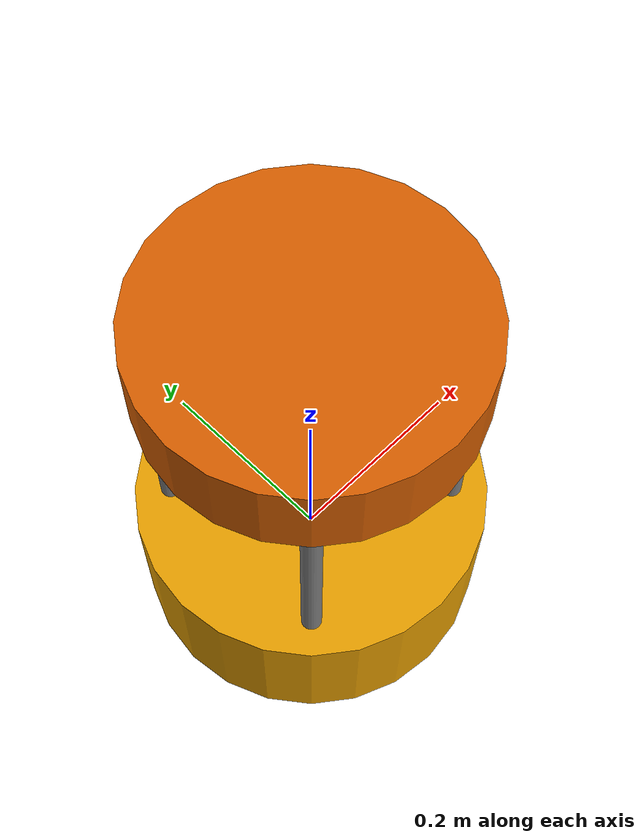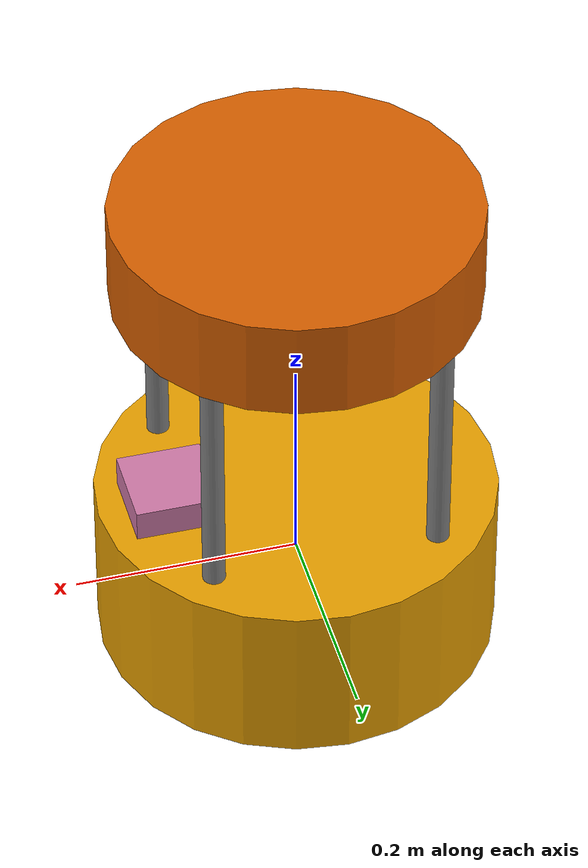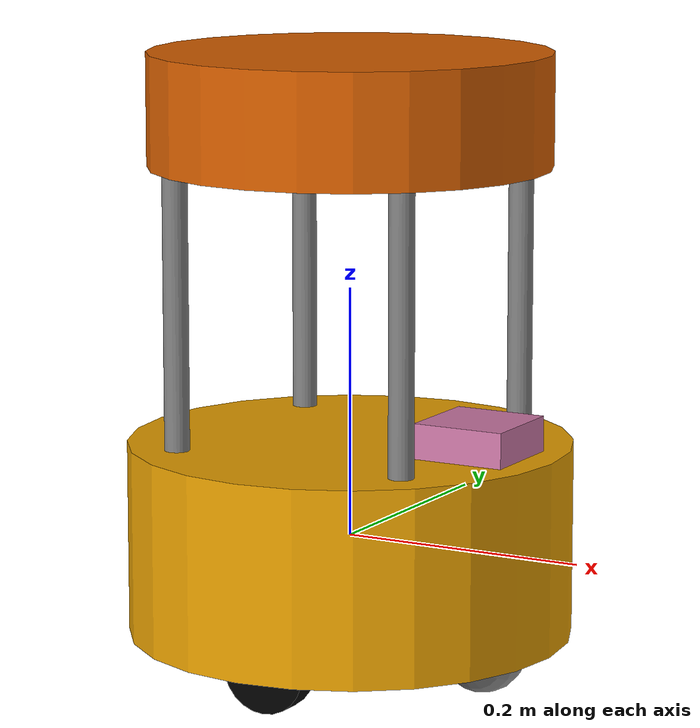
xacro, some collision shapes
<?xml version="1.0"?>
<robot xmlns:xacro="http://www.ros.org/wiki/xacro" name="barista_robot">

    <xacro:property name="robot_name" value="$(arg robot_name)"/>

    <xacro:include filename="$(find barista_robot_description)/xacro/barista_robot.gazebo.xacro" />
    <xacro:include filename="$(find barista_robot_description)/xacro/wheel.xacro" />
    <xacro:include filename="$(find barista_robot_description)/xacro/standoff.xacro" />
    <xacro:include filename="$(find barista_robot_description)/xacro/cup_holder_tray.xacro" />

    <xacro:property name="base_radius" value="0.178"/>
    <xacro:property name="base_length" value="0.155"/>
    <xacro:property name="base_mass" value="2.35"/>

    <xacro:property name="wheel_radius" value="0.0352"/>
    <xacro:property name="wheel_length" value="0.0206"/>
    <xacro:property name="wheel_mass" value="0.2"/>
    <xacro:property name="wheel_friction" value="1.0"/>
    <xacro:property name="wheel_damping" value="1.0"/>
    <xacro:property name="wheel_effort_limit" value="10000"/>
    <xacro:property name="wheel_velocity_limit" value="1000"/>

    <xacro:property name="caster_radius" value="0.0352"/>
    <xacro:property name="caster_mass" value="0.05"/>
    <xacro:property name="caster_friction" value="0.1"/>
    <xacro:property name="caster_damping" value="0.0"/>
    <xacro:property name="caster_effort_limit" value="1000.0"/>
    <xacro:property name="caster_velocity_limit" value="100.0"/>

    <xacro:property name="standoff_radius" value="0.010"/>
    <xacro:property name="standoff_length" value="0.220"/>
    <xacro:property name="standoff_mass" value="0.05"/>

    <xacro:property name="cup_holder_tray_radius" value="0.160"/>
    <xacro:property name="cup_holder_tray_length" value="0.090"/>
    <xacro:property name="cup_holder_tray_mass" value="0.5"/>
    <xacro:property name="cup_holder_tray_z_offset" value="0.3425"/>

    <xacro:property name="include_laser" value="true"/>

    <xacro:property name="rick_color" value="0.0 0.0 0.5 1"/>
    <xacro:property name="morty_color" value="0.5 0.0 0.0 1"/>

    <material name="rick_material">
        <color rgba="${rick_color}"/>
    </material>

    <material name="morty_material">
        <color rgba="${morty_color}"/>
    </material>

    <material name="gray">
        <color rgba="0.5 0.5 0.5 1.0"/>
    </material>

    <material name="black">
        <color rgba="0.0 0.0 0.0 1"/>
    </material>

    <!-- main body -->

    <link name="base_link">
        <visual>
            <geometry>
                <cylinder radius="${base_radius}" length="${base_length}"/>
            </geometry>
            <material name="${robot_name}_material"/>
        </visual>

        <collision>
            <origin rpy="0 0 0" xyz="0 0 0"/>
            <geometry>
                <cylinder radius="${base_radius}" length="${base_length}"/>
            </geometry>
        </collision>

        <inertial>
            <origin rpy="0 0 0" xyz="0 0 0"/>
            <mass value="${base_mass}"/>
            <inertia ixx="0.01392573958333333" ixy="0" ixz="0" iyy="0.01392573958333333" iyz="0" izz="0.02650260416666667"/>
        </inertial>
    </link>

    <!-- Left Wheel -->

    <xacro:wheel wheel_name="left_wheel" />

    <joint name="joint_left_wheel" type="continuous">
        <origin rpy="0 0 0" xyz="0 0.128 -0.0775"/>
        <child link="left_wheel"/>
        <parent link="base_link"/>
        <axis rpy="0 0 0" xyz="0 1 0"/>
        <limit effort="10000" velocity="1000"/>
        <joint_properties damping="1.0" friction="1.0"/>
    </joint>

    <!-- Right Wheel -->

    <xacro:wheel wheel_name="right_wheel" />

    <joint name="joint_right_wheel" type="continuous">
        <origin rpy="0 0 0" xyz="0 -0.128 -0.0775"/>
        <child link="right_wheel"/>
        <parent link="base_link"/>
        <axis rpy="0 0 0" xyz="0 1 0"/>
        <limit effort="10000" velocity="1000"/>
        <joint_properties damping="1.0" friction="1.0"/>
    </joint>

    <!-- Caster Wheel Front -->

    <link name="front_yaw_link">
        <visual>
            <origin rpy="0 1.5707 1.5707" xyz="0 0 0"/>
            <geometry>
            <cylinder length="0.001" radius="0.0045000000000000005"/>
            </geometry>
            <material name="gray"/>
        </visual>
        <collision>
            <origin rpy="0 1.5707 1.5707" xyz="0 0 0"/>
            <geometry>
            <cylinder length="0.001" radius="0.0045000000000000005"/>
            </geometry>
        </collision>
        <inertial>
            <origin rpy="0 1.5707 1.5707" xyz="0 0 0"/>
            <mass value="0.001"/>
            <inertia ixx="5.145833333333334e-09" ixy="0" ixz="0" iyy="5.145833333333334e-09" iyz="0" izz="1.0125000000000003e-08"/>
        </inertial>
    </link>

    <joint name="front_yaw_joint" type="continuous">
        <origin rpy="0 0 0" xyz="0.120 0 -0.0775" />
        <parent link="base_link" />
        <child link="front_yaw_link" />
        <axis xyz="0 0 1" />
        <limit effort="${caster_effort_limit}" velocity="${caster_velocity_limit}" />
        <dynamics damping="${caster_damping}" friction="${caster_friction}"/>
    </joint>

    <link name="front_roll_link">
        <visual>
            <origin rpy="0 1.5707 1.5707" xyz="0 0 0"/>
            <geometry>
            <cylinder length="0.001" radius="0.0045000000000000005"/>
            </geometry>
            <material name="gray"/>
        </visual>
        <collision>
            <origin rpy="0 1.5707 1.5707" xyz="0 0 0"/>
            <geometry>
            <cylinder length="0.001" radius="0.0045000000000000005"/>
            </geometry>
        </collision>
        <inertial>
            <origin rpy="0 1.5707 1.5707" xyz="0 0 0"/>
            <mass value="0.001"/>
            <inertia ixx="5.145833333333334e-09" ixy="0" ixz="0" iyy="5.145833333333334e-09" iyz="0" izz="1.0125000000000003e-08"/>
        </inertial>
    </link>

    <joint name="front_roll_joint" type="continuous">
        <origin rpy="0 0 0" xyz="0 0 0" />
        <parent link="front_yaw_link" />
        <child link="front_roll_link" />
        <axis xyz="1 0 0" />
        <limit effort="${caster_effort_limit}" velocity="${caster_velocity_limit}" />
        <dynamics damping="${caster_damping}" friction="${caster_friction}"/>
    </joint>

    <link name="front_pitch_link">
        <visual>
            <origin rpy="0 1.5707 1.5707" xyz="0 0 0"/>
            <geometry>
            <sphere radius="${caster_radius}"/>
            </geometry>
            <material name="gray"/>
        </visual>
        <collision>
            <origin rpy="0 1.5707 1.5707" xyz="0 0 0"/>
            <geometry>
            <sphere radius="${caster_radius}"/>
            </geometry>
        </collision>
        <inertial>
            <origin rpy="0 1.5707 1.5707" xyz="0 0 0"/>
            <mass value="${caster_mass}"/>
            <inertia ixx="1.531733333333333e-05" ixy="0" ixz="0" iyy="1.531733333333333e-05" iyz="0" izz="1.531733333333333e-05"/>
        </inertial>
    </link>

    <joint name="front_pitch_joint" type="continuous">
        <origin rpy="0 0 0" xyz="0 0 0" />
        <parent link="front_roll_link" />
        <child link="front_pitch_link" />
        <axis xyz="0 1 0" />
        <limit effort="${caster_effort_limit}" velocity="${caster_velocity_limit}" />
        <dynamics damping="${caster_damping}" friction="${caster_friction}"/>
    </joint>

    <!-- Caster Wheel Back -->

    <link name="back_yaw_link">
        <visual>
            <origin rpy="0 1.5707 1.5707" xyz="0 0 0"/>
            <geometry>
            <cylinder length="0.001" radius="0.0045000000000000005"/>
            </geometry>
            <material name="gray"/>
        </visual>
        <collision>
            <origin rpy="0 1.5707 1.5707" xyz="0 0 0"/>
            <geometry>
            <cylinder length="0.001" radius="0.0045000000000000005"/>
            </geometry>
        </collision>
        <inertial>
            <origin rpy="0 1.5707 1.5707" xyz="0 0 0"/>
            <mass value="0.001"/>
            <inertia ixx="5.145833333333334e-09" ixy="0" ixz="0" iyy="5.145833333333334e-09" iyz="0" izz="1.0125000000000003e-08"/>
        </inertial>
    </link>

    <joint name="back_yaw_joint" type="continuous">
        <origin rpy="0 0 0" xyz="-0.120 0 -0.0775" />
        <parent link="base_link" />
        <child link="back_yaw_link" />
        <axis xyz="0 0 1" />
        <limit effort="${caster_effort_limit}" velocity="${caster_velocity_limit}" />
        <dynamics damping="${caster_damping}" friction="${caster_friction}"/>
    </joint>

    <link name="back_roll_link">
        <visual>
            <origin rpy="0 1.5707 1.5707" xyz="0 0 0"/>
            <geometry>
            <cylinder length="0.001" radius="0.0045000000000000005"/>
            </geometry>
            <material name="gray"/>
        </visual>
        <collision>
            <origin rpy="0 1.5707 1.5707" xyz="0 0 0"/>
            <geometry>
            <cylinder length="0.001" radius="0.0045000000000000005"/>
            </geometry>
        </collision>
        <inertial>
            <origin rpy="0 1.5707 1.5707" xyz="0 0 0"/>
            <mass value="0.001"/>
            <inertia ixx="5.145833333333334e-09" ixy="0" ixz="0" iyy="5.145833333333334e-09" iyz="0" izz="1.0125000000000003e-08"/>
        </inertial>
    </link>

    <joint name="back_roll_joint" type="continuous">
        <origin rpy="0 0 0" xyz="0 0 0" />
        <parent link="back_yaw_link" />
        <child link="back_roll_link" />
        <axis xyz="1 0 0" />
        <limit effort="${caster_effort_limit}" velocity="${caster_velocity_limit}" />
        <dynamics damping="${caster_damping}" friction="${caster_friction}"/>
    </joint>

    <link name="back_pitch_link">
        <visual>
            <origin rpy="0 1.5707 1.5707" xyz="0 0 0"/>
            <geometry>
            <sphere radius="${caster_radius}"/>
            </geometry>
            <material name="gray"/>
        </visual>
        <collision>
            <origin rpy="0 1.5707 1.5707" xyz="0 0 0"/>
            <geometry>
            <sphere radius="${caster_radius}"/>
            </geometry>
        </collision>
        <inertial>
            <origin rpy="0 1.5707 1.5707" xyz="0 0 0"/>
            <mass value="${caster_mass}"/>
            <inertia ixx="1.531733333333333e-05" ixy="0" ixz="0" iyy="1.531733333333333e-05" iyz="0" izz="1.531733333333333e-05"/>
        </inertial>
    </link>

    <joint name="back_pitch_joint" type="continuous">
        <origin rpy="0 0 0" xyz="0 0 0" />
        <parent link="back_roll_link" />
        <child link="back_pitch_link" />
        <axis xyz="0 1 0" />
        <limit effort="${caster_effort_limit}" velocity="${caster_velocity_limit}" />
        <dynamics damping="${caster_damping}" friction="${caster_friction}"/>
    </joint>

   <!-- Standoff Rod 1 -->

    <xacro:standoff_rod rod_name="standoff_rod_1" />

    <joint name="joint_standoff_rod_1" type="fixed">
        <origin rpy="0 0 0" xyz="0.100 0.100 0.1875"/>
        <parent link="base_link"/>
        <child link="standoff_rod_1"/>
    </joint>

    <!-- Standoff Rod 2 -->

    <xacro:standoff_rod rod_name="standoff_rod_2" />

    <joint name="joint_standoff_rod_2" type="fixed">
        <origin rpy="0 0 0" xyz="-0.100 0.100 0.1875"/>
        <parent link="base_link"/>
        <child link="standoff_rod_2"/>
    </joint>

    <!-- Standoff Rod 3 -->

    <xacro:standoff_rod rod_name="standoff_rod_3" />

    <joint name="joint_standoff_rod_3" type="fixed">
        <origin rpy="0 0 0" xyz="-0.100 -0.100 0.1875"/>
        <parent link="base_link"/>
        <child link="standoff_rod_3"/>
    </joint>

    <!-- Standoff Rod 4 -->

    <xacro:standoff_rod rod_name="standoff_rod_4" />

    <joint name="joint_standoff_rod_4" type="fixed">
        <origin rpy="0 0 0" xyz="0.100 -0.100 0.1875"/>
        <parent link="base_link"/>
        <child link="standoff_rod_4"/>
    </joint>

    <!-- Top Base -->

    <xacro:cup_holder_tray tray_z_pos="${cup_holder_tray_z_offset}" />

    <joint name="joint_cup_holder_tray" type="fixed">
        <origin rpy="0 0 0" xyz="0 0 0.3425"/>
        <parent link="base_link"/>
        <child link="cup_holder_tray"/>
    </joint>

    <!-- Laser Scanner -->

    <xacro:macro name="laser_scanner" params="include_laser">
        <xacro:if value="${include_laser}">
            <link name="laser_scan_link">
                <visual>
                <origin rpy="0 0 0" xyz="0 0 0"/>
                <geometry>
                    <mesh filename="package://barista_robot_description/models/hokuyo_urg_04lx.dae" scale="1.0 1.0 1.0"/>
                </geometry>
                </visual>
                <collision>
                <origin rpy="0 0 0" xyz="0 0 0.0204"/>
                <geometry>
                    <box size="0.074986 0.074935 0.0408"/>
                </geometry>
                </collision>
                <inertial>
                <mass value="0.01"/>
                <origin rpy="0 0 0" xyz="0 0 0.0204"/>
                <inertia ixx="6.066578520833334e-06" ixy="0" ixz="0" iyy="6.072950163333333e-06" iyz="0" izz="9.365128684166666e-06"/>
                </inertial>
            </link>

            <joint name="laser_scan_link_joint" type="fixed">
                <origin rpy="0 0 0" xyz="0.115 0.0 0.065"/>
                <parent link="base_link"/>
                <child link="laser_scan_link"/>
            </joint>

            <link name="laser_scan_frame"></link>

            <joint name="laser_scan_frame_joint" type="fixed">
                <origin rpy="0 0 0" xyz="0 0 0.055"/>
                <parent link="laser_scan_link"/>
                <child link="laser_scan_frame"/>
            </joint>
        </xacro:if>
    </xacro:macro>

    <xacro:laser_scanner include_laser="${include_laser}" />

    <xacro:gazebo_elements />

</robot>

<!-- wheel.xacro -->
<robot xmlns:xacro="http://www.ros.org/wiki/xacro" name="barista_robot">

    <xacro:macro name="wheel" params="wheel_name">
        <link name="${wheel_name}">
            <visual>
            <origin rpy="0 1.5707 1.5707" xyz="0 0 0"/>
            <geometry>
                <cylinder length="${wheel_length}" radius="${wheel_radius}"/>
            </geometry>
            <material name="black"/>
            </visual>

            <collision>
            <origin rpy="0 1.5707 1.5707" xyz="0 0 0"/>
            <geometry>
                <cylinder length="${wheel_length}" radius="${wheel_radius}"/>
            </geometry>
            </collision>

            <inertial>
            <origin rpy="0 1.5707 1.5707" xyz="0 0 0"/>
            <mass value="${wheel_mass}"/>
            <inertia ixx="3.07426666666667e-05" ixy="0" ixz="0" iyy="3.07426666666667e-05" iyz="0" izz="6.12266666666667e-05"/>
            </inertial>
        </link>
    </xacro:macro>

</robot>

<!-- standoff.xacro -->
<robot xmlns:xacro="http://www.ros.org/wiki/xacro" name="barista_robot">

    <xacro:macro name="standoff_rod" params="rod_name">
        <link name="${rod_name}">
            <visual>
            <origin rpy="0 0 0" xyz="0 0 0"/>
            <geometry>
                <cylinder length="${standoff_length}" radius="${standoff_radius}"/>
            </geometry>
            <material name="gray"/>
            </visual>
            <collision>
            <origin rpy="0 0 0" xyz="0 0 0"/>
            <geometry>
                <cylinder length="${standoff_length}" radius="${standoff_radius}"/>
            </geometry>
            </collision>
            <inertial>
            <origin rpy="0 0 0" xyz="0 0 0"/>
            <mass value="${standoff_mass}"/>
            <inertia ixx="2.058333333333333e-06" ixy="0" ixz="0" iyy="2.058333333333333e-06" iyz="0" izz="5.0625e-09"/>
            </inertial>
        </link>
    </xacro:macro>

</robot>

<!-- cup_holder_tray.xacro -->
<robot xmlns:xacro="http://www.ros.org/wiki/xacro" name="barista_robot">

    <xacro:macro name="cup_holder_tray" params="tray_z_pos">
        <link name="cup_holder_tray">
            <visual>
            <geometry>
                <cylinder radius="${cup_holder_tray_radius}" length="${cup_holder_tray_length}"/>
            </geometry>
            <material name="${robot_name}_material"/>
            </visual>
            <collision>
            <origin rpy="0 0 0" xyz="0 0 0"/>
            <geometry>
                <cylinder radius="${cup_holder_tray_radius}" length="${cup_holder_tray_length}"/>
            </geometry>
            </collision>
            <inertial>
            <origin rpy="0 0 0" xyz="0 0 0"/>
            <mass value="${cup_holder_tray_mass}"/>
            <inertia ixx="0.0028783333333333335" ixy="0" ixz="0" iyy="0.0028783333333333335" iyz="0" izz="0.00512"/>
            </inertial>
        </link>
    </xacro:macro>

</robot>
